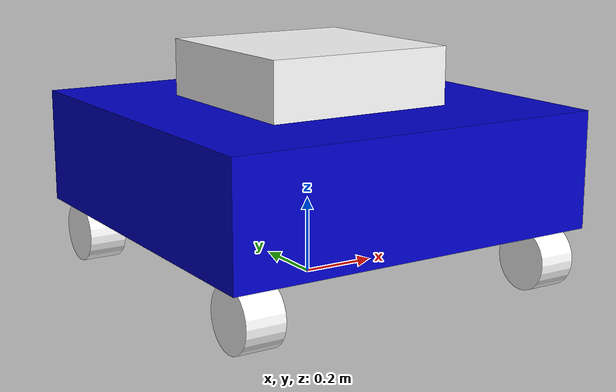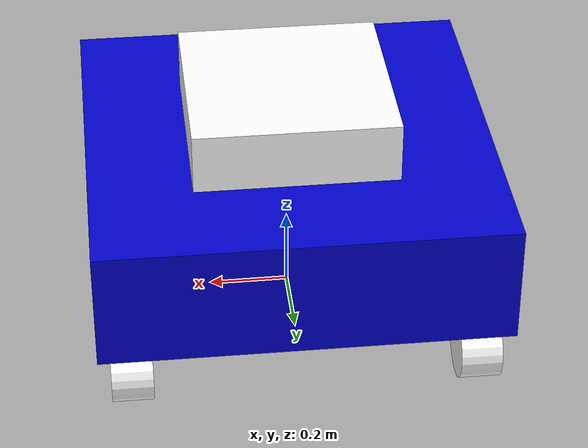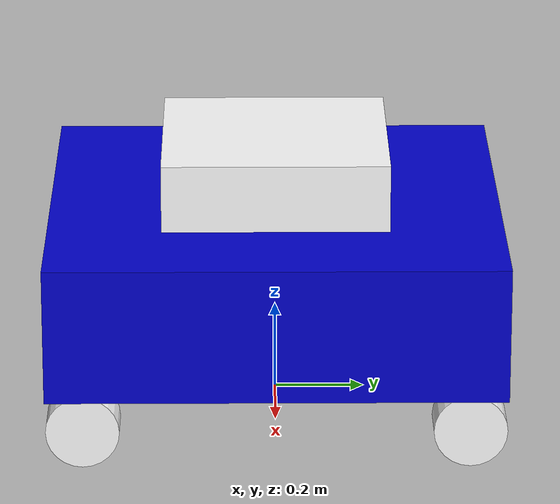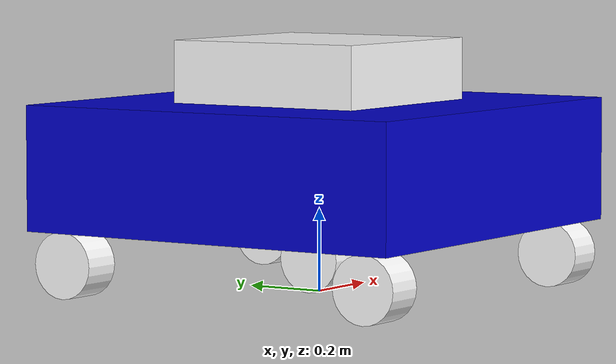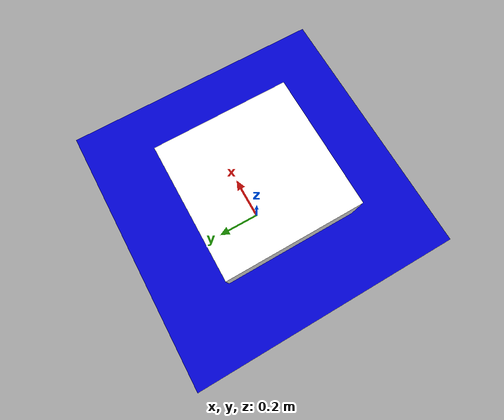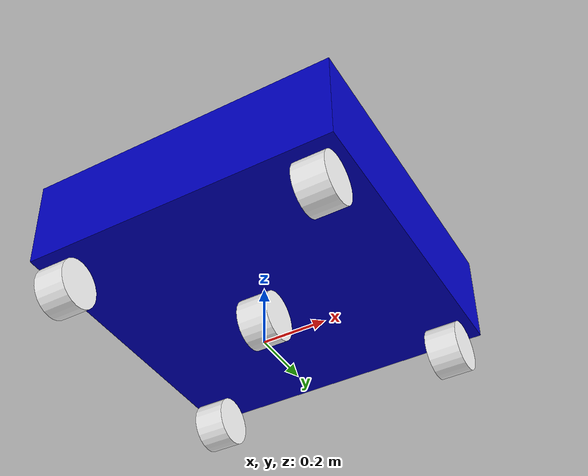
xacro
<?xml version="1.0" ?>
<robot xmlns:xacro="http://www.ros.org/wiki/xacro" name="5-wheeled_Robot">
<xacro:property name="wheel_radius" value="0.08"/>
<xacro:property name="wheel_length" value="0.1"/>
<xacro:property name="bottom_box_length" value="1"/>
<xacro:property name="bottom_box_height" value="0.3"/>
<xacro:property name="upper_box_length" value="0.5"/>
<xacro:property name="upper_box_height" value="0.3"/>
 <material name="blue">
    <color rgba="0 0 0.8 1"/>
  </material>
<material name="black">
    <color rgba="0 0 0 0"/>
  </material>
  <material name="white">
    <color rgba="1 1 1 1"/>
  </material>

<link name="base_link">
    <visual>
	<origin rpy="0 0 0" xyz="0 0 0"/>
      <geometry>
        <box size="${bottom_box_length} ${bottom_box_length} ${bottom_box_height}"/>
      </geometry>
	<material name="blue"/>
    </visual>
 <collision>
     <geometry>
        <box size="${bottom_box_length} ${bottom_box_length} ${bottom_box_height}"/>
     </geometry>
    </collision>
  </link>

  <link name="box">
  <visual>
   <geometry>
        <box size="${upper_box_length} ${upper_box_length} ${upper_box_height}"/>
      </geometry>
	<material name="white"/>
    </visual>
    <collision>
     <geometry>
        <box size="${upper_box_length} ${upper_box_length} ${upper_box_height}"/>
     </geometry>
    </collision>
  </link>
<link name="base_footprint">
</link>
  <link name="wheel1">
      <visual>
     <origin xyz="0 0 0" rpy="0 0 0"/>
     <geometry>
       <cylinder radius="${wheel_radius}" length="${wheel_length}"/>
     </geometry>
	<material name="white"/>
    </visual>
    <collision>
     <geometry>
       <cylinder radius="${wheel_radius}" length="${wheel_length}"/>
     </geometry>
    </collision>
  </link>

    <link name="wheel2">
   <visual>
     <origin xyz="0 0 0" rpy="0 0 0"/>
     <geometry>
       <cylinder radius="${wheel_radius}" length="${wheel_length}"/>
     </geometry>
	<material name="white"/>
    </visual>
    <collision>
     <geometry>
       <cylinder radius="${wheel_radius}" length="${wheel_length}"/>
     </geometry>
    </collision>
  </link>

 <link name="wheel3">
      <visual>
     <origin xyz="0 0 0" rpy="0 0 0"/>
     <geometry>
       <cylinder radius="${wheel_radius}" length="${wheel_length}"/>
     </geometry>
	<material name="white"/>
    </visual>
    <collision>
     <geometry>
       <cylinder radius="${wheel_radius}" length="${wheel_length}"/>
     </geometry>
    </collision>
  </link>

 <link name="wheel4">
      <visual>
     <origin xyz="0 0 0" rpy="0 0 0"/>
     <geometry>
       <cylinder radius="${wheel_radius}" length="${wheel_length}"/>
     </geometry>
	<material name="white"/>
    </visual>
    <collision>
     <geometry>
       <cylinder radius="${wheel_radius}" length="${wheel_length}"/>
     </geometry>
    </collision>
  </link>

 <link name="wheel5">
      <visual>
     <origin xyz="0 0 0" rpy="0 0 0"/>
     <geometry>
       <cylinder radius="${wheel_radius}" length="${wheel_length}"/>
     </geometry>
	<material name="white"/>
    </visual>
    <collision>
     <geometry>
       <cylinder radius="${wheel_radius}" length="${wheel_length}"/>
     </geometry>
    </collision>
  </link>

 <joint name="base_to_box" type="fixed">
    <parent link="base_link"/>
    <child link="box"/>
    <origin xyz="0 0 ${bottom_box_height/2}" rpy="0 0 0"/>

  </joint>
   <joint name="base_to_wheel" type="continuous">
    <parent link="base_link"/>
    <child link="wheel1"/>
   <origin xyz="0 0 ${-(bottom_box_height/2 + wheel_radius)}" rpy="0 -1.57 0"/>

  </joint>

  <joint name="base_to_wheel2" type="continuous">
    <parent link="base_link"/>
    <child link="wheel2"/>
   <origin xyz="${bottom_box_length/2 - wheel_radius} ${bottom_box_length/2 -wheel_radius} ${-(bottom_box_height/2 + wheel_radius)}" rpy="0 -1.57 0"/>
  </joint>

<joint name="base_to_wheel3" type="continuous">
    <parent link="base_link"/>
    <child link="wheel3"/>
   <origin xyz="${bottom_box_length/2 - wheel_radius} ${-(bottom_box_length/2 - wheel_radius)} ${-(bottom_box_height/2 + wheel_radius)}" rpy="0 -1.57 0"/>
  </joint>
<joint name="base_to_wheel4" type="continuous">
    <parent link="base_link"/>
    <child link="wheel4"/>
   <origin xyz="${-(bottom_box_length/2 - wheel_radius)} ${bottom_box_length/2 - wheel_radius} ${-(bottom_box_height/2 + wheel_radius)}" rpy="0 -1.57 0"/>
  </joint>
<joint name="base_to_wheel5" type="continuous">
    <parent link="base_link"/>
    <child link="wheel5"/>
   <origin xyz="${-(bottom_box_length/2 - wheel_radius)} ${-(bottom_box_length/2 - wheel_radius)} ${-(bottom_box_height/2 + wheel_radius)}" rpy="0 -1.57 0"/>
  </joint>

   <joint name="base_foot_to_base" type="fixed">
    <parent link="base_footprint"/>
    <child link="base_link"/>
   <origin xyz="0 0 ${bottom_box_height/2 + wheel_radius*2}" rpy="0 0 0"/>
  </joint>
</robot>
